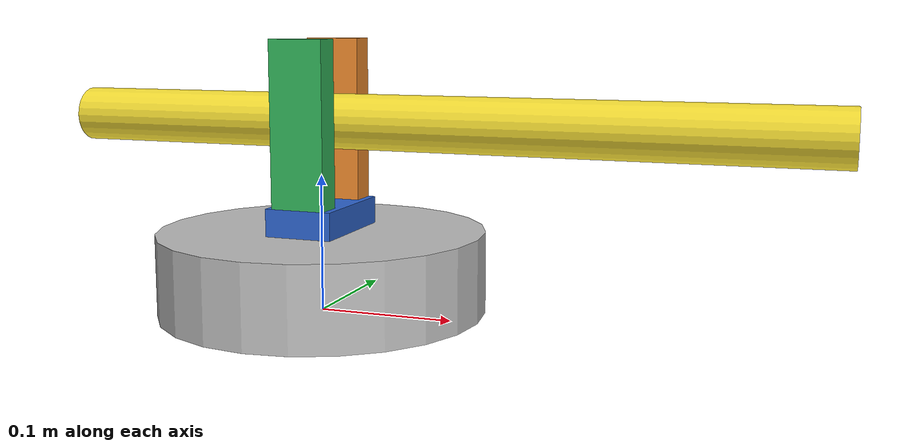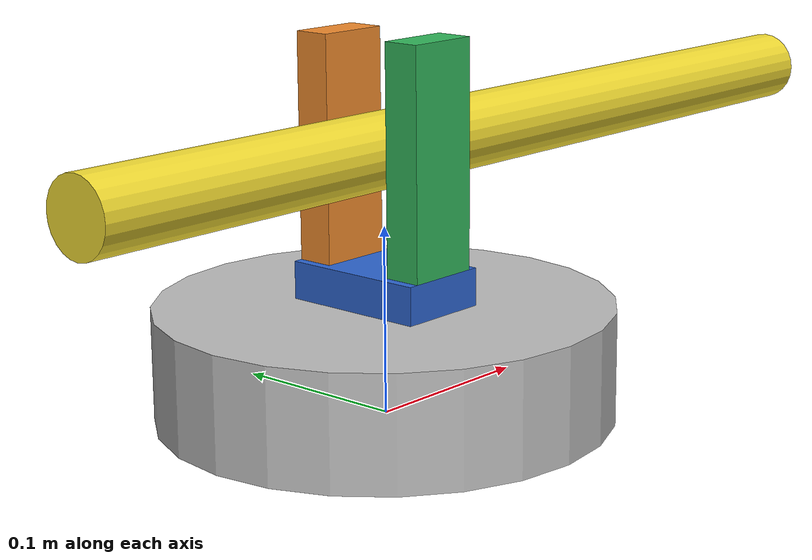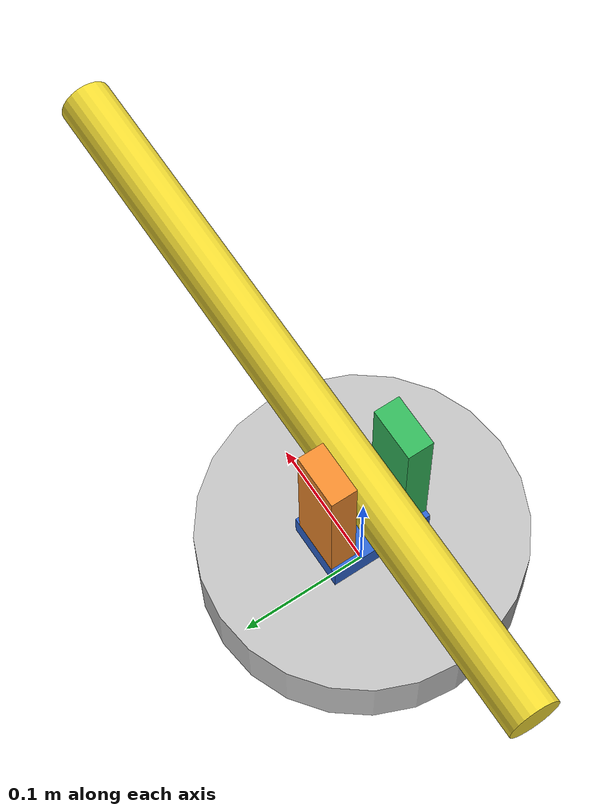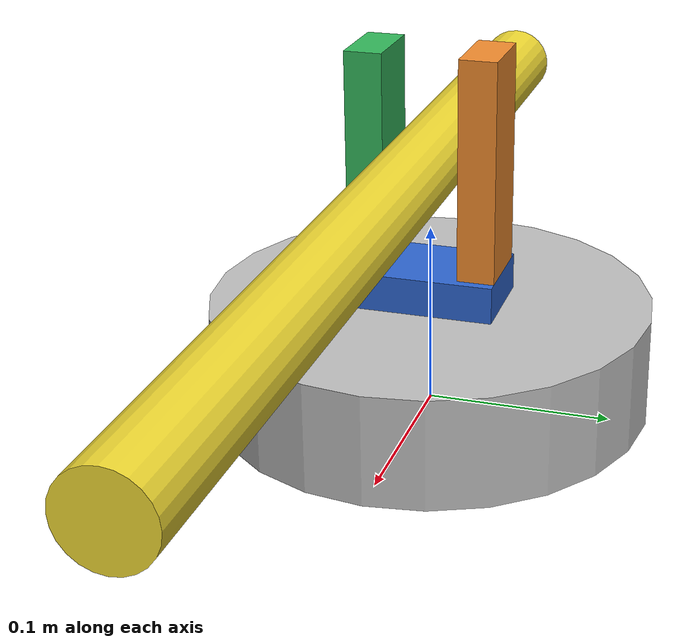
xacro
<?xml version="1.0" encoding="UTF-8"?>
<robot name="camera_turret">
  <link name="world"/>

  <link name="base_link">
    <visual>
      <geometry>
        <cylinder length="0.06" radius="0.12"/>
      </geometry>
      <material name="base_silver">
        <color rgba="0.75 0.75 0.75 1"/>
      </material>
      <origin rpy="0 0 0" xyz="0 0 0.03"/>
    </visual>
    <collision>
      <geometry>
        <cylinder length="0.06" radius="0.12"/>
      </geometry>
      <origin rpy="0 0 0" xyz="0 0 0.03"/>
    </collision>
    <inertial>
      <mass value="1.0"/>
      <origin rpy="0 0 0" xyz="0 0 0.03"/>
      <inertia ixx="0.0027" iyy="0.0027" izz="0.005" ixy="0" ixz="0" iyz="0"/>
    </inertial>
  </link>

  <joint name="fixed" type="fixed">
    <parent link="world"/>
    <child link="base_link"/>
  </joint>

  <link name="mobile_link">
    <collision>
      <origin xyz="0 0 0" rpy="0 0 0"/>
      <geometry>
    <box size="0.05 0.08 0.02"/>
      </geometry>
    </collision>
    <visual>
      <origin xyz="0 0 0" rpy="0 0 0"/>
      <geometry>
    <box size="0.05 0.08 0.02"/>
      </geometry>
      <material name="mobile_body_blue">
        <color rgba="0.18 0.40 0.82 1"/>
      </material>
    </visual>
    <inertial>
      <mass value="0.3" />
      <origin xyz="0 0 0" rpy="0 0 0"/>
      <inertia ixx="1.7e-4" ixy="0" ixz="0" iyy="7.25e-5" iyz="0" izz="2.225e-4" />
    </inertial>

    <!--Left ear-->
    <collision>
      <origin xyz="0 -0.03 0.0695" rpy="0 0 0"/>
      <geometry>
    <box size="0.04 0.02 0.119"/>
      </geometry>
    </collision>
    <visual>
      <origin xyz="0 -0.03 0.0695" rpy="0 0 0"/>
      <geometry>
    <box size="0.04 0.02 0.119"/>
      </geometry>
      <material name="left_ear_green">
        <color rgba="0.20 0.72 0.36 1"/>
      </material>
    </visual>
    <inertial>
      <mass value="0.3" />
      <origin xyz="0 -0.03 0.0695" rpy="0 0 0"/>
      <inertia ixx="3.640e-4" ixy="0" ixz="0" iyy="3.940e-4" iyz="0" izz="5e-5" />
    </inertial>

    <!--Right ear-->
    <collision>
      <origin xyz="0 0.03 0.0695" rpy="0 0 0"/>
      <geometry>
    <box size="0.04 0.02 0.119"/>
      </geometry>
    </collision>
    <visual>
      <origin xyz="0 0.03 0.0695" rpy="0 0 0"/>
      <geometry>
    <box size="0.04 0.02 0.119"/>
      </geometry>
      <material name="right_ear_orange">
        <color rgba="0.95 0.55 0.18 1"/>
      </material>
    </visual>
    <inertial>
      <mass value="0.3" />
      <origin xyz="0 0.03 0.0695" rpy="0 0 0"/>
      <inertia ixx="3.640e-4" ixy="0" ixz="0" iyy="3.940e-4" iyz="0" izz="5e-5" />
    </inertial>
  </link>
  <joint name="mobileBase_joint" type="continuous">
    <axis xyz="0 0 1" />
    <origin xyz="0 0 0.07" rpy="0 0 0"/>
    <parent link="base_link"/>
    <child link="mobile_link"/>
  </joint>

  <link name="camera_link">
    <collision>
      <origin xyz="0.084 0 0" rpy="0 1.57079632679 0"/>
      <geometry>
    <cylinder length="0.56" radius="0.02"/>
      </geometry>
    </collision>
    <visual>
      <origin xyz="0.084 0 0" rpy="0 1.57079632679 0"/>
      <geometry>
    <cylinder length="0.56" radius="0.02"/>
      </geometry>
      <material name="camera_yellow">
        <color rgba="0.95 0.86 0.20 1"/>
      </material>
    </visual>
    <inertial>
      <mass value="0.2" />
      <origin xyz="0 0 0" rpy="0 0 0"/>
      <inertia ixx="4e-5" ixy="0" ixz="0" iyy="8e-5" iyz="0" izz="8e-5" />
    </inertial>
  </link>
  <joint name="camera_joint" type="continuous">
    <axis xyz="0 1 0" />
    <origin xyz="0 0 0.07" rpy="0 0 0"/>
    <parent link="mobile_link"/>
    <child link="camera_link"/>
  </joint>

</robot>
